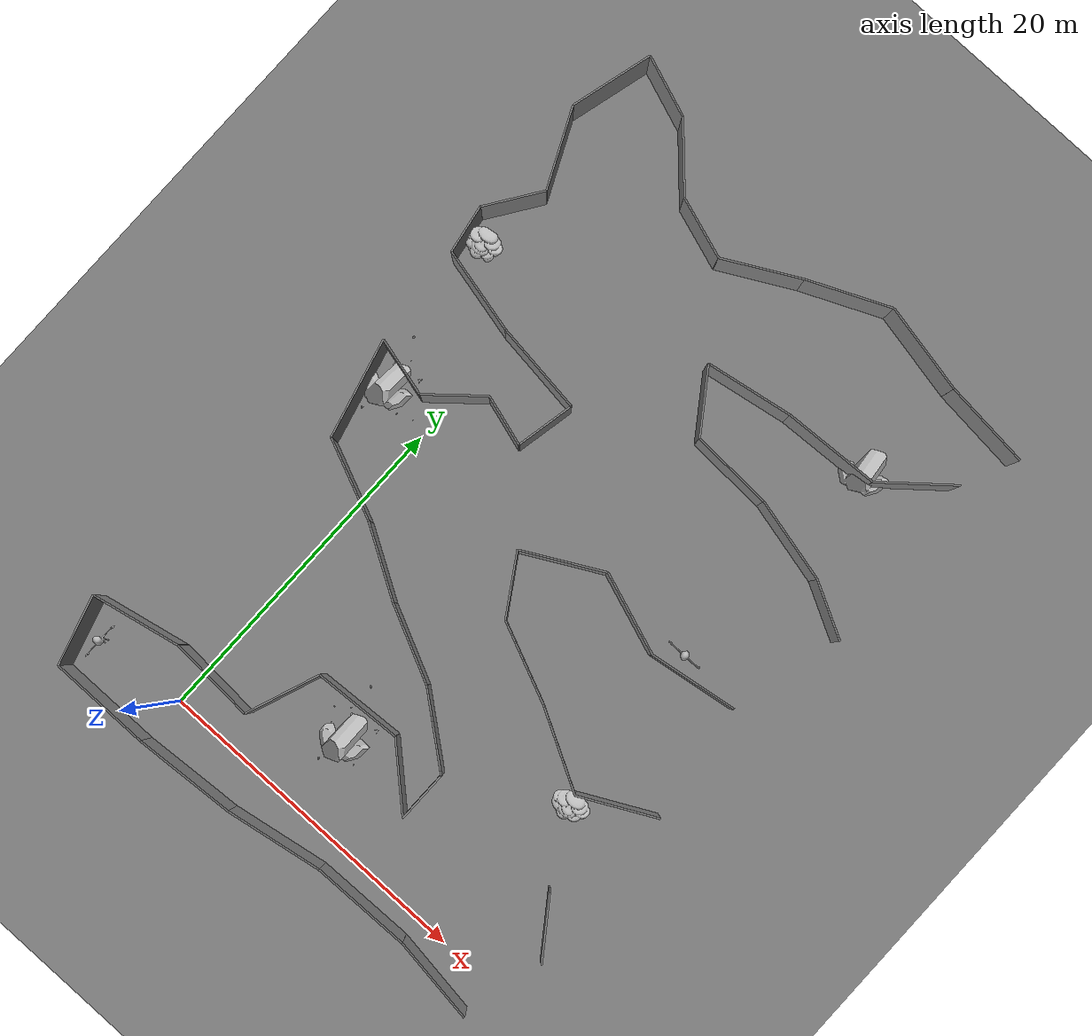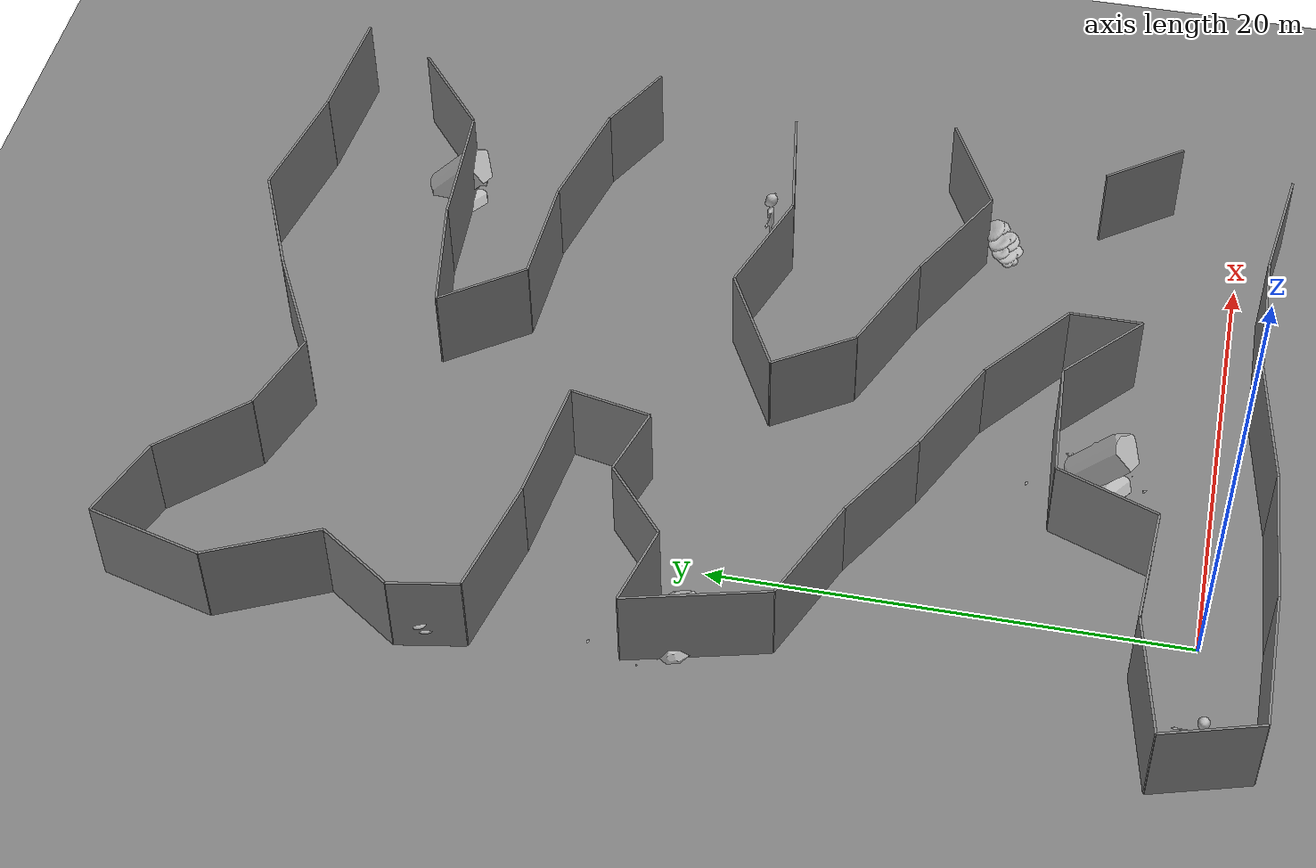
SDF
<sdf version="1.8">
 <world name="mars_cave">
  <model name="ground_plane">
   <static>1</static>
   <link name="link">
    <collision name="collision">
     <geometry><box><normal>0 0 1</normal><size>75 75 0.01</size></box></geometry>
    </collision>
    <visual name="visual">
     <geometry><plane><normal>0 0 1</normal><size>75 75</size></plane></geometry>
     <material>
      <ambient>0.5 0.5 0.5 1</ambient>
      <diffuse>0.5 0.5 0.5 1</diffuse>
      <specular>0.2 0.2 0.2 1</specular>
      <pbr><metal><albedo_map>package://cave_explorer/worlds/textures/mars_terrain1.jpg</albedo_map></metal></pbr>
     </material>
    </visual>
   </link>
   <pose>25 25 0 0 -0 0</pose>
  </model>
  <model name="wall_18">
   <pose>20.700000000000003 -1.4500000000000002 2.0 0 0 -0.13381097747459078</pose>
   <link name="Wall_0">
    <collision name="Wall_0_Collision">
     <geometry><box><size>5.246903848937961 4 0.1</size></box></geometry>
    </collision>
    <visual name="Wall_0_Visual">
     <geometry><box><size>5.246903848937961 4 0.1</size></box></geometry>
     <material>
      <ambient>0.5 0.5 0.5 1</ambient>
      <diffuse>0.5 0.5 0.5 1</diffuse>
      <specular>0.2 0.2 0.2 1</specular>
      <pbr><metal><albedo_map>package://cave_explorer/worlds/textures/wall03.jpg</albedo_map></metal></pbr>
     </material>
    </visual>
    <pose>0 0 0 1.5707963267948966 0 0</pose>
   </link>
   <static>1</static>
  </model>
  <model name="wall_19">
   <pose>15.100000000000001 -1.15 2.0 0 0 0.016665123713940723</pose>
   <link name="Wall_0">
    <collision name="Wall_0_Collision">
     <geometry><box><size>6.000833275471001 4 0.1</size></box></geometry>
    </collision>
    <visual name="Wall_0_Visual">
     <geometry><box><size>6.000833275471001 4 0.1</size></box></geometry>
     <material>
      <ambient>0.5 0.5 0.5 1</ambient>
      <diffuse>0.5 0.5 0.5 1</diffuse>
      <specular>0.2 0.2 0.2 1</specular>
      <pbr><metal><albedo_map>package://cave_explorer/worlds/textures/wall03.jpg</albedo_map></metal></pbr>
     </material>
    </visual>
    <pose>0 0 0 1.5707963267948966 0 0</pose>
   </link>
   <static>1</static>
  </model>
  <model name="wall_20">
   <pose>9.2 -1.7000000000000002 2.0 0 0 0.17073521147528284</pose>
   <link name="Wall_0">
    <collision name="Wall_0_Collision">
     <geometry><box><size>5.885575587824865 4 0.1</size></box></geometry>
    </collision>
    <visual name="Wall_0_Visual">
     <geometry><box><size>5.885575587824865 4 0.1</size></box></geometry>
     <material>
      <ambient>0.5 0.5 0.5 1</ambient>
      <diffuse>0.5 0.5 0.5 1</diffuse>
      <specular>0.2 0.2 0.2 1</specular>
      <pbr><metal><albedo_map>package://cave_explorer/worlds/textures/wall03.jpg</albedo_map></metal></pbr>
     </material>
    </visual>
    <pose>0 0 0 1.5707963267948966 0 0</pose>
   </link>
   <static>1</static>
  </model>
  <model name="wall_21">
   <pose>3.25 -2.4000000000000004 2.0 0 0 0.0654800249234648</pose>
   <link name="Wall_0">
    <collision name="Wall_0_Collision">
     <geometry><box><size>6.113100686231169 4 0.1</size></box></geometry>
    </collision>
    <visual name="Wall_0_Visual">
     <geometry><box><size>6.113100686231169 4 0.1</size></box></geometry>
     <material>
      <ambient>0.5 0.5 0.5 1</ambient>
      <diffuse>0.5 0.5 0.5 1</diffuse>
      <specular>0.2 0.2 0.2 1</specular>
      <pbr><metal><albedo_map>package://cave_explorer/worlds/textures/wall03.jpg</albedo_map></metal></pbr>
     </material>
    </visual>
    <pose>0 0 0 1.5707963267948966 0 0</pose>
   </link>
   <static>1</static>
  </model>
  <model name="wall_22">
   <pose>-2.85 -2.6 2.0 0 0 0.0</pose>
   <link name="Wall_0">
    <collision name="Wall_0_Collision">
     <geometry><box><size>6.1000000000000005 4 0.1</size></box></geometry>
    </collision>
    <visual name="Wall_0_Visual">
     <geometry><box><size>6.1000000000000005 4 0.1</size></box></geometry>
     <material>
      <ambient>0.5 0.5 0.5 1</ambient>
      <diffuse>0.5 0.5 0.5 1</diffuse>
      <specular>0.2 0.2 0.2 1</specular>
      <pbr><metal><albedo_map>package://cave_explorer/worlds/textures/wall03.jpg</albedo_map></metal></pbr>
     </material>
    </visual>
    <pose>0 0 0 1.5707963267948966 0 0</pose>
   </link>
   <static>1</static>
  </model>
  <model name="wall_23">
   <pose>-6.5 -0.55 2.0 0 0 -1.2860658882721845</pose>
   <link name="Wall_0">
    <collision name="Wall_0_Collision">
     <geometry><box><size>4.272001872658765 4 0.1</size></box></geometry>
    </collision>
    <visual name="Wall_0_Visual">
     <geometry><box><size>4.272001872658765 4 0.1</size></box></geometry>
     <material>
      <ambient>0.5 0.5 0.5 1</ambient>
      <diffuse>0.5 0.5 0.5 1</diffuse>
      <specular>0.2 0.2 0.2 1</specular>
      <pbr><metal><albedo_map>package://cave_explorer/worlds/textures/wall03.jpg</albedo_map></metal></pbr>
     </material>
    </visual>
    <pose>0 0 0 1.5707963267948966 0 0</pose>
   </link>
   <static>1</static>
  </model>
  <model name="wall_24">
   <pose>-4.45 2.05 2.0 0 0 -2.936950843760015</pose>
   <link name="Wall_0">
    <collision name="Wall_0_Collision">
     <geometry><box><size>5.412947441089743 4 0.1</size></box></geometry>
    </collision>
    <visual name="Wall_0_Visual">
     <geometry><box><size>5.412947441089743 4 0.1</size></box></geometry>
     <material>
      <ambient>0.5 0.5 0.5 1</ambient>
      <diffuse>0.5 0.5 0.5 1</diffuse>
      <specular>0.2 0.2 0.2 1</specular>
      <pbr><metal><albedo_map>package://cave_explorer/worlds/textures/wall04.jpg</albedo_map></metal></pbr>
     </material>
    </visual>
    <pose>0 0 0 1.5707963267948966 0 0</pose>
   </link>
   <static>1</static>
  </model>
  <model name="wall_25">
   <pose>0.7999999999999999 2.45 2.0 0 0 3.083964226112319</pose>
   <link name="Wall_0">
    <collision name="Wall_0_Collision">
     <geometry><box><size>5.208646657242167 4 0.1</size></box></geometry>
    </collision>
    <visual name="Wall_0_Visual">
     <geometry><box><size>5.208646657242167 4 0.1</size></box></geometry>
     <material>
      <ambient>0.5 0.5 0.5 1</ambient>
      <diffuse>0.5 0.5 0.5 1</diffuse>
      <specular>0.2 0.2 0.2 1</specular>
      <pbr><metal><albedo_map>package://cave_explorer/worlds/textures/wall04.jpg</albedo_map></metal></pbr>
     </material>
    </visual>
    <pose>0 0 0 1.5707963267948966 0 0</pose>
   </link>
   <static>1</static>
  </model>
  <model name="wall_26">
   <pose>4.2 4.449999999999999 2.0 0 0 -1.9270159821910469</pose>
   <link name="Wall_0">
    <collision name="Wall_0_Collision">
     <geometry><box><size>4.588027898781784 4 0.1</size></box></geometry>
    </collision>
    <visual name="Wall_0_Visual">
     <geometry><box><size>4.588027898781784 4 0.1</size></box></geometry>
     <material>
      <ambient>0.5 0.5 0.5 1</ambient>
      <diffuse>0.5 0.5 0.5 1</diffuse>
      <specular>0.2 0.2 0.2 1</specular>
      <pbr><metal><albedo_map>package://cave_explorer/worlds/textures/wall04.jpg</albedo_map></metal></pbr>
     </material>
    </visual>
    <pose>0 0 0 1.5707963267948966 0 0</pose>
   </link>
   <static>1</static>
  </model>
  <model name="wall_27">
   <pose>7.65 6.75 2.0 0 0 -3.085049216644976</pose>
   <link name="Wall_0">
    <collision name="Wall_0_Collision">
     <geometry><box><size>5.3084837759948 4 0.1</size></box></geometry>
    </collision>
    <visual name="Wall_0_Visual">
     <geometry><box><size>5.3084837759948 4 0.1</size></box></geometry>
     <material>
      <ambient>0.5 0.5 0.5 1</ambient>
      <diffuse>0.5 0.5 0.5 1</diffuse>
      <specular>0.2 0.2 0.2 1</specular>
      <pbr><metal><albedo_map>package://cave_explorer/worlds/textures/wall04.jpg</albedo_map></metal></pbr>
     </material>
    </visual>
    <pose>0 0 0 1.5707963267948966 0 0</pose>
   </link>
   <static>1</static>
  </model>
  <model name="wall_28">
   <pose>11.95 5.4 2.0 0 0 2.403777593469328</pose>
   <link name="Wall_0">
    <collision name="Wall_0_Collision">
     <geometry><box><size>4.459820624195551 4 0.1</size></box></geometry>
    </collision>
    <visual name="Wall_0_Visual">
     <geometry><box><size>4.459820624195551 4 0.1</size></box></geometry>
     <material>
      <ambient>0.5 0.5 0.5 1</ambient>
      <diffuse>0.5 0.5 0.5 1</diffuse>
      <specular>0.2 0.2 0.2 1</specular>
      <pbr><metal><albedo_map>package://cave_explorer/worlds/textures/wall04.jpg</albedo_map></metal></pbr>
     </material>
    </visual>
    <pose>0 0 0 1.5707963267948966 0 0</pose>
   </link>
   <static>1</static>
  </model>
  <model name="wall_29">
   <pose>13.6 5.45 2.0 0 0 -1.5707963267948966</pose>
   <link name="Wall_0">
    <collision name="Wall_0_Collision"><geometry><box><size>3.1 4 0.1</size></box></geometry></collision>
    <visual name="Wall_0_Visual">
     <geometry><box><size>3.1 4 0.1</size></box></geometry>
     <material>
      <ambient>0.5 0.5 0.5 1</ambient>
      <diffuse>0.5 0.5 0.5 1</diffuse>
      <specular>0.2 0.2 0.2 1</specular>
      <pbr><metal><albedo_map>package://cave_explorer/worlds/textures/wall04.jpg</albedo_map></metal></pbr>
     </material>
    </visual>
    <pose>0 0 0 1.5707963267948966 0 0</pose>
   </link>
   <static>1</static>
  </model>
  <model name="wall_30">
   <pose>11.649999999999999 8.55 2.0 0 0 -0.6716061562537401</pose>
   <link name="Wall_0">
    <collision name="Wall_0_Collision">
     <geometry><box><size>4.98196748283246 4 0.1</size></box></geometry>
    </collision>
    <visual name="Wall_0_Visual">
     <geometry><box><size>4.98196748283246 4 0.1</size></box></geometry>
     <material>
      <ambient>0.5 0.5 0.5 1</ambient>
      <diffuse>0.5 0.5 0.5 1</diffuse>
      <specular>0.2 0.2 0.2 1</specular>
      <pbr><metal><albedo_map>package://cave_explorer/worlds/textures/wall04.jpg</albedo_map></metal></pbr>
     </material>
    </visual>
    <pose>0 0 0 1.5707963267948966 0 0</pose>
   </link>
   <static>1</static>
  </model>
  <model name="wall_31">
   <pose>7.5 11.149999999999999 2.0 0 0 -0.4453010438876858</pose>
   <link name="Wall_0">
    <collision name="Wall_0_Collision">
     <geometry><box><size>4.875448697299562 4 0.1</size></box></geometry>
    </collision>
    <visual name="Wall_0_Visual">
     <geometry><box><size>4.875448697299562 4 0.1</size></box></geometry>
     <material>
      <ambient>0.5 0.5 0.5 1</ambient>
      <diffuse>0.5 0.5 0.5 1</diffuse>
      <specular>0.2 0.2 0.2 1</specular>
      <pbr><metal><albedo_map>package://cave_explorer/worlds/textures/wall04.jpg</albedo_map></metal></pbr>
     </material>
    </visual>
    <pose>0 0 0 1.5707963267948966 0 0</pose>
   </link>
   <static>1</static>
  </model>
  <model name="wall_32">
   <pose>3.3 13.399999999999999 2.0 0 0 -0.5404195002705843</pose>
   <link name="Wall_0">
    <collision name="Wall_0_Collision">
     <geometry><box><size>4.664761515876241 4 0.1</size></box></geometry>
    </collision>
    <visual name="Wall_0_Visual">
     <geometry><box><size>4.664761515876241 4 0.1</size></box></geometry>
     <material>
      <ambient>0.5 0.5 0.5 1</ambient>
      <diffuse>0.5 0.5 0.5 1</diffuse>
      <specular>0.2 0.2 0.2 1</specular>
      <pbr><metal><albedo_map>package://cave_explorer/worlds/textures/wall05.jpg</albedo_map></metal></pbr>
     </material>
    </visual>
    <pose>0 0 0 1.5707963267948966 0 0</pose>
   </link>
   <static>1</static>
  </model>
  <model name="wall_33">
   <pose>-0.9999999999999999 15.600000000000001 2.0 0 0 -0.41012734054149136</pose>
   <link name="Wall_0">
    <collision name="Wall_0_Collision">
     <geometry><box><size>5.015974481593782 4 0.1</size></box></geometry>
    </collision>
    <visual name="Wall_0_Visual">
     <geometry><box><size>5.015974481593782 4 0.1</size></box></geometry>
     <material>
      <ambient>0.5 0.5 0.5 1</ambient>
      <diffuse>0.5 0.5 0.5 1</diffuse>
      <specular>0.2 0.2 0.2 1</specular>
      <pbr><metal><albedo_map>package://cave_explorer/worlds/textures/wall05.jpg</albedo_map></metal></pbr>
     </material>
    </visual>
    <pose>0 0 0 1.5707963267948966 0 0</pose>
   </link>
   <static>1</static>
  </model>
  <model name="wall_34">
   <pose>-4.05 19.55 2.0 0 0 -1.3218336210021795</pose>
   <link name="Wall_0">
    <collision name="Wall_0_Collision">
     <geometry><box><size>6.087692502089768 4 0.1</size></box></geometry>
    </collision>
    <visual name="Wall_0_Visual">
     <geometry><box><size>6.087692502089768 4 0.1</size></box></geometry>
     <material>
      <ambient>0.5 0.5 0.5 1</ambient>
      <diffuse>0.5 0.5 0.5 1</diffuse>
      <specular>0.2 0.2 0.2 1</specular>
      <pbr><metal><albedo_map>package://cave_explorer/worlds/textures/wall05.jpg</albedo_map></metal></pbr>
     </material>
    </visual>
    <pose>0 0 0 1.5707963267948966 0 0</pose>
   </link>
   <static>1</static>
  </model>
  <model name="wall_35">
   <pose>-3.05 22.05 2.0 0 0 2.889902681831607</pose>
   <link name="Wall_0">
    <collision name="Wall_0_Collision">
     <geometry><box><size>3.61386219991853 4 0.1</size></box></geometry>
    </collision>
    <visual name="Wall_0_Visual">
     <geometry><box><size>3.61386219991853 4 0.1</size></box></geometry>
     <material>
      <ambient>0.5 0.5 0.5 1</ambient>
      <diffuse>0.5 0.5 0.5 1</diffuse>
      <specular>0.2 0.2 0.2 1</specular>
      <pbr><metal><albedo_map>package://cave_explorer/worlds/textures/wall05.jpg</albedo_map></metal></pbr>
     </material>
    </visual>
    <pose>0 0 0 1.5707963267948966 0 0</pose>
   </link>
   <static>1</static>
  </model>
  <model name="wall_36">
   <pose>0.15000000000000002 22.85 2.0 0 0 -2.4301335278502854</pose>
   <link name="Wall_0">
    <collision name="Wall_0_Collision">
     <geometry><box><size>3.8288379438153295 4 0.1</size></box></geometry>
    </collision>
    <visual name="Wall_0_Visual">
     <geometry><box><size>3.8288379438153295 4 0.1</size></box></geometry>
     <material>
      <ambient>0.5 0.5 0.5 1</ambient>
      <diffuse>0.5 0.5 0.5 1</diffuse>
      <specular>0.2 0.2 0.2 1</specular>
      <pbr><metal><albedo_map>package://cave_explorer/worlds/textures/wall05.jpg</albedo_map></metal></pbr>
     </material>
    </visual>
    <pose>0 0 0 1.5707963267948966 0 0</pose>
   </link>
   <static>1</static>
  </model>
  <model name="wall_37">
   <pose>3.0999999999999996 23.65 2.0 0 0 2.8501358591119255</pose>
   <link name="Wall_0">
    <collision name="Wall_0_Collision">
     <geometry><box><size>3.132091952673165 4 0.1</size></box></geometry>
    </collision>
    <visual name="Wall_0_Visual">
     <geometry><box><size>3.132091952673165 4 0.1</size></box></geometry>
     <material>
      <ambient>0.5 0.5 0.5 1</ambient>
      <diffuse>0.5 0.5 0.5 1</diffuse>
      <specular>0.2 0.2 0.2 1</specular>
      <pbr><metal><albedo_map>package://cave_explorer/worlds/textures/wall05.jpg</albedo_map></metal></pbr>
     </material>
    </visual>
    <pose>0 0 0 1.5707963267948966 0 0</pose>
   </link>
   <static>1</static>
  </model>
  <model name="wall_38">
   <pose>4.949999999999999 24.95 2.0 0 0 -1.7681918866447774</pose>
   <link name="Wall_0">
    <collision name="Wall_0_Collision">
     <geometry><box><size>3.5693136595149495 4 0.1</size></box></geometry>
    </collision>
    <visual name="Wall_0_Visual">
     <geometry><box><size>3.5693136595149495 4 0.1</size></box></geometry>
     <material>
      <ambient>0.5 0.5 0.5 1</ambient>
      <diffuse>0.5 0.5 0.5 1</diffuse>
      <specular>0.2 0.2 0.2 1</specular>
      <pbr><metal><albedo_map>package://cave_explorer/worlds/textures/wall05.jpg</albedo_map></metal></pbr>
     </material>
    </visual>
    <pose>0 0 0 1.5707963267948966 0 0</pose>
   </link>
   <static>1</static>
  </model>
  <model name="wall_39">
   <pose>2.55 27.049999999999997 2.0 0 0 -0.12659212727997193</pose>
   <link name="Wall_0">
    <collision name="Wall_0_Collision">
     <geometry><box><size>5.544366510251645 4 0.1</size></box></geometry>
    </collision>
    <visual name="Wall_0_Visual">
     <geometry><box><size>5.544366510251645 4 0.1</size></box></geometry>
     <material>
      <ambient>0.5 0.5 0.5 1</ambient>
      <diffuse>0.5 0.5 0.5 1</diffuse>
      <specular>0.2 0.2 0.2 1</specular>
      <pbr><metal><albedo_map>package://cave_explorer/worlds/textures/wall05.jpg</albedo_map></metal></pbr>
     </material>
    </visual>
    <pose>0 0 0 1.5707963267948966 0 0</pose>
   </link>
   <static>1</static>
  </model>
  <model name="wall_40">
   <pose>-2.75 28.0 2.0 0 0 -0.23109066719589763</pose>
   <link name="Wall_0">
    <collision name="Wall_0_Collision">
     <geometry><box><size>5.239274758971895 4 0.1</size></box></geometry>
    </collision>
    <visual name="Wall_0_Visual">
     <geometry><box><size>5.239274758971895 4 0.1</size></box></geometry>
     <material>
      <ambient>0.5 0.5 0.5 1</ambient>
      <diffuse>0.5 0.5 0.5 1</diffuse>
      <specular>0.2 0.2 0.2 1</specular>
      <pbr><metal><albedo_map>package://cave_explorer/worlds/textures/wall06.jpg</albedo_map></metal></pbr>
     </material>
    </visual>
    <pose>0 0 0 1.5707963267948966 0 0</pose>
   </link>
   <static>1</static>
  </model>
  <model name="wall_41">
   <pose>-5.55 30.05 2.0 0 0 -1.4000611153196136</pose>
   <link name="Wall_0">
    <collision name="Wall_0_Collision">
     <geometry><box><size>2.942787793912431 4 0.1</size></box></geometry>
    </collision>
    <visual name="Wall_0_Visual">
     <geometry><box><size>2.942787793912431 4 0.1</size></box></geometry>
     <material>
      <ambient>0.5 0.5 0.5 1</ambient>
      <diffuse>0.5 0.5 0.5 1</diffuse>
      <specular>0.2 0.2 0.2 1</specular>
      <pbr><metal><albedo_map>package://cave_explorer/worlds/textures/wall06.jpg</albedo_map></metal></pbr>
     </material>
    </visual>
    <pose>0 0 0 1.5707963267948966 0 0</pose>
   </link>
   <static>1</static>
  </model>
  <model name="wall_42">
   <pose>-4.75 33.05 2.0 0 0 -2.166206202273629</pose>
   <link name="Wall_0">
    <collision name="Wall_0_Collision">
     <geometry><box><size>3.744329045369812 4 0.1</size></box></geometry>
    </collision>
    <visual name="Wall_0_Visual">
     <geometry><box><size>3.744329045369812 4 0.1</size></box></geometry>
     <material>
      <ambient>0.5 0.5 0.5 1</ambient>
      <diffuse>0.5 0.5 0.5 1</diffuse>
      <specular>0.2 0.2 0.2 1</specular>
      <pbr><metal><albedo_map>package://cave_explorer/worlds/textures/wall06.jpg</albedo_map></metal></pbr>
     </material>
    </visual>
    <pose>0 0 0 1.5707963267948966 0 0</pose>
   </link>
   <static>1</static>
  </model>
  <model name="wall_43">
   <pose>-4.75 36.85 2.0 0 0 -1.1341691669813554</pose>
   <link name="Wall_0">
    <collision name="Wall_0_Collision">
     <geometry><box><size>4.965883607174054 4 0.1</size></box></geometry>
    </collision>
    <visual name="Wall_0_Visual">
     <geometry><box><size>4.965883607174054 4 0.1</size></box></geometry>
     <material>
      <ambient>0.5 0.5 0.5 1</ambient>
      <diffuse>0.5 0.5 0.5 1</diffuse>
      <specular>0.2 0.2 0.2 1</specular>
      <pbr><metal><albedo_map>package://cave_explorer/worlds/textures/wall06.jpg</albedo_map></metal></pbr>
     </material>
    </visual>
    <pose>0 0 0 1.5707963267948966 0 0</pose>
   </link>
   <static>1</static>
  </model>
  <model name="wall_44">
   <pose>-5.15 41.55 2.0 0 0 -1.8301280711955814</pose>
   <link name="Wall_0">
    <collision name="Wall_0_Collision">
     <geometry><box><size>5.0695167422546294 4 0.1</size></box></geometry>
    </collision>
    <visual name="Wall_0_Visual">
     <geometry><box><size>5.0695167422546294 4 0.1</size></box></geometry>
     <material>
      <ambient>0.5 0.5 0.5 1</ambient>
      <diffuse>0.5 0.5 0.5 1</diffuse>
      <specular>0.2 0.2 0.2 1</specular>
      <pbr><metal><albedo_map>package://cave_explorer/worlds/textures/wall06.jpg</albedo_map></metal></pbr>
     </material>
    </visual>
    <pose>0 0 0 1.5707963267948966 0 0</pose>
   </link>
   <static>1</static>
  </model>
  <model name="wall_45">
   <pose>-2.7 43.35 2.0 0 0 2.795053789155852</pose>
   <link name="Wall_0">
    <collision name="Wall_0_Collision">
     <geometry><box><size>3.8275318418009268 4 0.1</size></box></geometry>
    </collision>
    <visual name="Wall_0_Visual">
     <geometry><box><size>3.8275318418009268 4 0.1</size></box></geometry>
     <material>
      <ambient>0.5 0.5 0.5 1</ambient>
      <diffuse>0.5 0.5 0.5 1</diffuse>
      <specular>0.2 0.2 0.2 1</specular>
      <pbr><metal><albedo_map>package://cave_explorer/worlds/textures/wall06.jpg</albedo_map></metal></pbr>
     </material>
    </visual>
    <pose>0 0 0 1.5707963267948966 0 0</pose>
   </link>
   <static>1</static>
  </model>
  <model name="wall_46">
   <pose>0.6500000000000001 41.05 2.0 0 0 2.3249546567620762</pose>
   <link name="Wall_0">
    <collision name="Wall_0_Collision">
     <geometry><box><size>4.527692569068711 4 0.1</size></box></geometry>
    </collision>
    <visual name="Wall_0_Visual">
     <geometry><box><size>4.527692569068711 4 0.1</size></box></geometry>
     <material>
      <ambient>0.5 0.5 0.5 1</ambient>
      <diffuse>0.5 0.5 0.5 1</diffuse>
      <specular>0.2 0.2 0.2 1</specular>
      <pbr><metal><albedo_map>package://cave_explorer/worlds/textures/wall06.jpg</albedo_map></metal></pbr>
     </material>
    </visual>
    <pose>0 0 0 1.5707963267948966 0 0</pose>
   </link>
   <static>1</static>
  </model>
  <model name="wall_47">
   <pose>4.0 38.8 2.0 0 0 2.819842099193152</pose>
   <link name="Wall_0">
    <collision name="Wall_0_Collision">
     <geometry><box><size>3.7947331922020537 4 0.1</size></box></geometry>
    </collision>
    <visual name="Wall_0_Visual">
     <geometry><box><size>3.7947331922020537 4 0.1</size></box></geometry>
     <material>
      <ambient>0.5 0.5 0.5 1</ambient>
      <diffuse>0.5 0.5 0.5 1</diffuse>
      <specular>0.2 0.2 0.2 1</specular>
      <pbr><metal><albedo_map>package://cave_explorer/worlds/textures/wall06.jpg</albedo_map></metal></pbr>
     </material>
    </visual>
    <pose>0 0 0 1.5707963267948966 0 0</pose>
   </link>
   <static>1</static>
  </model>
  <model name="wall_48">
   <pose>7.949999999999999 39.35 2.0 0 0 -2.6504290553035332</pose>
   <link name="Wall_0">
    <collision name="Wall_0_Collision">
     <geometry><box><size>4 4.876474136094642 0.1</size></box></geometry>
    </collision>
    <visual name="Wall_0_Visual">
     <geometry><box><size>4 4.876474136094642 0.1</size></box></geometry>
     <material>
      <ambient>0.5 0.5 0.5 1</ambient>
      <diffuse>0.5 0.5 0.5 1</diffuse>
      <specular>0.2 0.2 0.2 1</specular>
      <pbr><metal><albedo_map>package://cave_explorer/worlds/textures/stop_sign.jpg</albedo_map></metal></pbr>
     </material>
    </visual>
    <pose>0 0 0 1.5707963267948966 1.5707963267948966 0</pose>
   </link>
   <static>1</static>
  </model>
  <model name="wall_49">
   <pose>12.45 41.55 2.0 0 0 -2.7213959399805177</pose>
   <link name="Wall_0">
    <collision name="Wall_0_Collision">
     <geometry><box><size>5.147815070493502 4 0.1</size></box></geometry>
    </collision>
    <visual name="Wall_0_Visual">
     <geometry><box><size>5.147815070493502 4 0.1</size></box></geometry>
     <material>
      <ambient>0.5 0.5 0.5 1</ambient>
      <diffuse>0.5 0.5 0.5 1</diffuse>
      <specular>0.2 0.2 0.2 1</specular>
      <pbr><metal><albedo_map>package://cave_explorer/worlds/textures/wall07.jpg</albedo_map></metal></pbr>
     </material>
    </visual>
    <pose>0 0 0 1.5707963267948966 0 0</pose>
   </link>
   <static>1</static>
  </model>
  <model name="wall_50">
   <pose>17.5 42.05 2.0 0 0 2.940638389901696</pose>
   <link name="Wall_0">
    <collision name="Wall_0_Collision">
     <geometry><box><size>5.510898293381941 4 0.1</size></box></geometry>
    </collision>
    <visual name="Wall_0_Visual">
     <geometry><box><size>5.510898293381941 4 0.1</size></box></geometry>
     <material>
      <ambient>0.5 0.5 0.5 1</ambient>
      <diffuse>0.5 0.5 0.5 1</diffuse>
      <specular>0.2 0.2 0.2 1</specular>
      <pbr><metal><albedo_map>package://cave_explorer/worlds/textures/wall07.jpg</albedo_map></metal></pbr>
     </material>
    </visual>
    <pose>0 0 0 1.5707963267948966 0 0</pose>
   </link>
   <static>1</static>
  </model>
  <model name="wall_51">
   <pose>22.85 41.25 2.0 0 0 3.047531418961807</pose>
   <link name="Wall_0">
    <collision name="Wall_0_Collision">
     <geometry><box><size>5.323532661682466 4 0.1</size></box></geometry>
    </collision>
    <visual name="Wall_0_Visual">
     <geometry><box><size>5.323532661682466 4 0.1</size></box></geometry>
     <material>
      <ambient>0.5 0.5 0.5 1</ambient>
      <diffuse>0.5 0.5 0.5 1</diffuse>
      <specular>0.2 0.2 0.2 1</specular>
      <pbr><metal><albedo_map>package://cave_explorer/worlds/textures/wall07.jpg</albedo_map></metal></pbr>
     </material>
    </visual>
    <pose>0 0 0 1.5707963267948966 0 0</pose>
   </link>
   <static>1</static>
  </model>
  <model name="wall_53">
   <pose>22.15 36.25 2.0 0 0 0.6973907898697067</pose>
   <link name="Wall_0">
    <collision name="Wall_0_Collision">
     <geometry><box><size>4.827007354458864 4 0.1</size></box></geometry>
    </collision>
    <visual name="Wall_0_Visual">
     <geometry><box><size>4.827007354458864 4 0.1</size></box></geometry>
     <material>
      <ambient>0.5 0.5 0.5 1</ambient>
      <diffuse>0.5 0.5 0.5 1</diffuse>
      <specular>0.2 0.2 0.2 1</specular>
      <pbr><metal><albedo_map>package://cave_explorer/worlds/textures/wall07.jpg</albedo_map></metal></pbr>
     </material>
    </visual>
    <pose>0 0 0 1.5707963267948966 0 0</pose>
   </link>
   <static>1</static>
  </model>
  <model name="wall_54">
   <pose>17.4 34.55 2.0 0 0 0.051678084482430726</pose>
   <link name="Wall_0">
    <collision name="Wall_0_Collision">
     <geometry><box><size>5.807753438292642 4 0.1</size></box></geometry>
    </collision>
    <visual name="Wall_0_Visual">
     <geometry><box><size>5.807753438292642 4 0.1</size></box></geometry>
     <material>
      <ambient>0.5 0.5 0.5 1</ambient>
      <diffuse>0.5 0.5 0.5 1</diffuse>
      <specular>0.2 0.2 0.2 1</specular>
      <pbr><metal><albedo_map>package://cave_explorer/worlds/textures/wall07.jpg</albedo_map></metal></pbr>
     </material>
    </visual>
    <pose>0 0 0 1.5707963267948966 0 0</pose>
   </link>
   <static>1</static>
  </model>
  <model name="wall_55">
   <pose>11.9 33.95 2.0 0 0 0.17137912638950742</pose>
   <link name="Wall_0">
    <collision name="Wall_0_Collision">
     <geometry><box><size>5.2773099207835035 4 0.1</size></box></geometry>
    </collision>
    <visual name="Wall_0_Visual">
     <geometry><box><size>5.2773099207835035 4 0.1</size></box></geometry>
     <material>
      <ambient>0.5 0.5 0.5 1</ambient>
      <diffuse>0.5 0.5 0.5 1</diffuse>
      <specular>0.2 0.2 0.2 1</specular>
      <pbr><metal><albedo_map>package://cave_explorer/worlds/textures/wall07.jpg</albedo_map></metal></pbr>
     </material>
    </visual>
    <pose>0 0 0 1.5707963267948966 0 0</pose>
   </link>
   <static>1</static>
  </model>
  <model name="wall_56">
   <pose>10.5 31.8 2.0 0 0 2.185459278717062</pose>
   <link name="Wall_0">
    <collision name="Wall_0_Collision">
     <geometry><box><size>4.16173040933696 4 0.1</size></box></geometry>
    </collision>
    <visual name="Wall_0_Visual">
     <geometry><box><size>4.16173040933696 4 0.1</size></box></geometry>
     <material>
      <ambient>0.5 0.5 0.5 1</ambient>
      <diffuse>0.5 0.5 0.5 1</diffuse>
      <specular>0.2 0.2 0.2 1</specular>
      <pbr><metal><albedo_map>package://cave_explorer/worlds/textures/wall08.png</albedo_map></metal></pbr>
     </material>
    </visual>
    <pose>0 0 0 1.5707963267948966 0 0</pose>
   </link>
   <static>1</static>
  </model>
  <model name="wall_57">
   <pose>14.15 30.0 2.0 0 0 3.1007989707219275</pose>
   <link name="Wall_0">
    <collision name="Wall_0_Collision">
     <geometry><box><size>4.9040799340956935 4 0.1</size></box></geometry>
    </collision>
    <visual name="Wall_0_Visual">
     <geometry><box><size>4.9040799340956935 4 0.1</size></box></geometry>
     <material>
      <ambient>0.5 0.5 0.5 1</ambient>
      <diffuse>0.5 0.5 0.5 1</diffuse>
      <specular>0.2 0.2 0.2 1</specular>
      <pbr><metal><albedo_map>package://cave_explorer/worlds/textures/wall08.png</albedo_map></metal></pbr>
     </material>
    </visual>
    <pose>0 0 0 1.5707963267948966 0 0</pose>
   </link>
   <static>1</static>
  </model>
  <model name="wall_58">
   <pose>19.1 29.299999999999997 2.0 0 0 2.90604767286893</pose>
   <link name="Wall_0">
    <collision name="Wall_0_Collision">
     <geometry><box><size>5.141984052872976 4 0.1</size></box></geometry>
    </collision>
    <visual name="Wall_0_Visual">
     <geometry><box><size>5.141984052872976 4 0.1</size></box></geometry>
     <material>
      <ambient>0.5 0.5 0.5 1</ambient>
      <diffuse>0.5 0.5 0.5 1</diffuse>
      <specular>0.2 0.2 0.2 1</specular>
      <pbr><metal><albedo_map>package://cave_explorer/worlds/textures/wall08.png</albedo_map></metal></pbr>
     </material>
    </visual>
    <pose>0 0 0 1.5707963267948966 0 0</pose>
   </link>
   <static>1</static>
  </model>
  <model name="wall_59">
   <pose>23.200000000000003 27.85 2.0 0 0 2.6532587025333876</pose>
   <link name="Wall_0">
    <collision name="Wall_0_Collision">
     <geometry><box><size>3.6235341863986865 4 0.1</size></box></geometry>
    </collision>
    <visual name="Wall_0_Visual">
     <geometry><box><size>3.6235341863986865 4 0.1</size></box></geometry>
     <material>
      <ambient>0.5 0.5 0.5 1</ambient>
      <diffuse>0.5 0.5 0.5 1</diffuse>
      <specular>0.2 0.2 0.2 1</specular>
      <pbr><metal><albedo_map>package://cave_explorer/worlds/textures/wall08.png</albedo_map></metal></pbr>
     </material>
    </visual>
    <pose>0 0 0 1.5707963267948966 0 0</pose>
   </link>
   <static>1</static>
  </model>
  <model name="wall_88">
   <pose>21.85 12.2 2.0 0 0 0.4729066036629293</pose>
   <link name="Wall_0">
    <collision name="Wall_0_Collision">
     <geometry><box><size>4.83011387029333 4 0.1</size></box></geometry>
    </collision>
    <visual name="Wall_0_Visual">
     <geometry><box><size>4.83011387029333 4 0.1</size></box></geometry>
     <material>
      <ambient>0.5 0.5 0.5 1</ambient>
      <diffuse>0.5 0.5 0.5 1</diffuse>
      <specular>0.2 0.2 0.2 1</specular>
      <pbr><metal><albedo_map>package://cave_explorer/worlds/textures/wall12.png</albedo_map></metal></pbr>
     </material>
    </visual>
    <pose>0 0 0 1.5707963267948966 0 0</pose>
   </link>
   <static>1</static>
  </model>
  <model name="wall_89">
   <pose>17.4 12.35 2.0 0 0 -0.49782233261700126</pose>
   <link name="Wall_0">
    <collision name="Wall_0_Collision">
     <geometry><box><size>5.235456045083369 4 0.1</size></box></geometry>
    </collision>
    <visual name="Wall_0_Visual">
     <geometry><box><size>5.235456045083369 4 0.1</size></box></geometry>
     <material>
      <ambient>0.5 0.5 0.5 1</ambient>
      <diffuse>0.5 0.5 0.5 1</diffuse>
      <specular>0.2 0.2 0.2 1</specular>
      <pbr><metal><albedo_map>package://cave_explorer/worlds/textures/wall12.png</albedo_map></metal></pbr>
     </material>
    </visual>
    <pose>0 0 0 1.5707963267948966 0 0</pose>
   </link>
   <static>1</static>
  </model>
  <model name="wall_90">
   <pose>12.8 14.6 2.0 0 0 -0.410127340541491</pose>
   <link name="Wall_0">
    <collision name="Wall_0_Collision">
     <geometry><box><size>5.015974481593781 4 0.1</size></box></geometry>
    </collision>
    <visual name="Wall_0_Visual">
     <geometry><box><size>5.015974481593781 4 0.1</size></box></geometry>
     <material>
      <ambient>0.5 0.5 0.5 1</ambient>
      <diffuse>0.5 0.5 0.5 1</diffuse>
      <specular>0.2 0.2 0.2 1</specular>
      <pbr><metal><albedo_map>package://cave_explorer/worlds/textures/wall12.png</albedo_map></metal></pbr>
     </material>
    </visual>
    <pose>0 0 0 1.5707963267948966 0 0</pose>
   </link>
   <static>1</static>
  </model>
  <model name="wall_91">
   <pose>9.45 17.25 2.0 0 0 -1.0040671092713902</pose>
   <link name="Wall_0">
    <collision name="Wall_0_Collision">
     <geometry><box><size>3.9115214431215883 4 0.1</size></box></geometry>
    </collision>
    <visual name="Wall_0_Visual">
     <geometry><box><size>3.9115214431215883 4 0.1</size></box></geometry>
     <material>
      <ambient>0.5 0.5 0.5 1</ambient>
      <diffuse>0.5 0.5 0.5 1</diffuse>
      <specular>0.2 0.2 0.2 1</specular>
      <pbr><metal><albedo_map>package://cave_explorer/worlds/textures/wall12.png</albedo_map></metal></pbr>
     </material>
    </visual>
    <pose>0 0 0 1.5707963267948966 0 0</pose>
   </link>
   <static>1</static>
  </model>
  <model name="wall_92">
   <pose>10.65 20.1 2.0 0 0 -2.6516353273360647</pose>
   <link name="Wall_0">
    <collision name="Wall_0_Collision">
     <geometry><box><size>5.100000000000001 4 0.1</size></box></geometry>
    </collision>
    <visual name="Wall_0_Visual">
     <geometry><box><size>5.100000000000001 4 0.1</size></box></geometry>
     <material>
      <ambient>0.5 0.5 0.5 1</ambient>
      <diffuse>0.5 0.5 0.5 1</diffuse>
      <specular>0.2 0.2 0.2 1</specular>
      <pbr><metal><albedo_map>package://cave_explorer/worlds/textures/wall12.png</albedo_map></metal></pbr>
     </material>
    </visual>
    <pose>0 0 0 1.5707963267948966 0 0</pose>
   </link>
   <static>1</static>
  </model>
  <model name="wall_93">
   <pose>15.3 20.450000000000003 2.0 0 0 2.8012107149478864</pose>
   <link name="Wall_0">
    <collision name="Wall_0_Collision">
     <geometry><box><size>5.092150822589605 4 0.1</size></box></geometry>
    </collision>
    <visual name="Wall_0_Visual">
     <geometry><box><size>5.092150822589605 4 0.1</size></box></geometry>
     <material>
      <ambient>0.5 0.5 0.5 1</ambient>
      <diffuse>0.5 0.5 0.5 1</diffuse>
      <specular>0.2 0.2 0.2 1</specular>
      <pbr><metal><albedo_map>package://cave_explorer/worlds/textures/wall12.png</albedo_map></metal></pbr>
     </material>
    </visual>
    <pose>0 0 0 1.5707963267948966 0 0</pose>
   </link>
   <static>1</static>
  </model>
  <model name="wall_94">
   <pose>20.35 20.0 2.0 0 0 -2.9917801970168965</pose>
   <link name="Wall_0">
    <collision name="Wall_0_Collision">
     <geometry><box><size>5.360037313302959 4 0.1</size></box></geometry>
    </collision>
    <visual name="Wall_0_Visual">
     <geometry><box><size>5.360037313302959 4 0.1</size></box></geometry>
     <material>
      <ambient>0.5 0.5 0.5 1</ambient>
      <diffuse>0.5 0.5 0.5 1</diffuse>
      <specular>0.2 0.2 0.2 1</specular>
      <pbr><metal><albedo_map>package://cave_explorer/worlds/textures/wall12.png</albedo_map></metal></pbr>
     </material>
    </visual>
    <pose>0 0 0 1.5707963267948966 0 0</pose>
   </link>
   <static>1</static>
  </model>
  <model name="wall_97">
   <pose>23.35 4.7 2.0 0 0 2.193995656728963</pose>
   <link name="Wall_0">
    <collision name="Wall_0_Collision">
     <geometry><box><size>4 3.9408120990476063 0.1</size></box></geometry>
    </collision>
    <visual name="Wall_0_Visual">
     <geometry><box><size>4 3.9408120990476063 0.1</size></box></geometry>
     <material>
      <ambient>0.5 0.5 0.5 1</ambient>
      <diffuse>0.5 0.5 0.5 1</diffuse>
      <specular>0.2 0.2 0.2 1</specular>
      <pbr><metal><albedo_map>package://cave_explorer/worlds/textures/stop_sign.jpg</albedo_map></metal></pbr>
     </material>
    </visual>
    <pose>0 0 0 1.5707963267948966 1.5707963267948966 0</pose>
   </link>
   <static>1</static>
  </model>
  <model name="artifact_0">
   <pose>-5.4 -0.3 0.2 1.5707963267948966 0 1.5707963267948966</pose>
   <link name="artifact_0">
    <visual name="artifact_0_Visual">
     <geometry>
      <mesh>
       <scale>1.5 1.5 1.5</scale>
       <uri>package://cave_explorer/worlds/models/artifacts/green_alien/green_alien.obj</uri>
      </mesh>
     </geometry>
    </visual>
    <collision name="artifact_0_collision">
     <geometry>
      <mesh>
       <scale>1.5 1.5 1.5</scale>
       <uri>package://cave_explorer/worlds/models/artifacts/green_alien/green_alien.obj</uri>
      </mesh>
     </geometry>
    </collision>
   </link>
   <static>1</static>
  </model>
  <model name="artifact_1">
   <pose>8.2 5.2 -0.2 1.5707963267948966 0 0</pose>
   <link name="artifact_0">
    <visual name="artifact_0_Visual">
     <geometry>
      <mesh>
       <scale>0.07 0.07 0.07</scale>
       <uri>package://cave_explorer/worlds/models/artifacts/green_crystals_game_ready_asset/green_crystals_game_ready_asset.obj</uri>
      </mesh>
     </geometry>
    </visual>
    <collision name="artifact_0_collision">
     <geometry>
      <mesh>
       <scale>0.07 0.07 0.07</scale>
       <uri>package://cave_explorer/worlds/models/artifacts/green_crystals_game_ready_asset/green_crystals_game_ready_asset.obj</uri>
      </mesh>
     </geometry>
    </collision>
   </link>
   <static>1</static>
  </model>
  <model name="artifact_4">
   <pose>20.0 10.2 0.8 1.5707963267948966 0 0</pose>
   <link name="artifact_0">
    <visual name="artifact_0_Visual">
     <geometry>
      <mesh>
       <scale>7.0 7.0 7.0</scale>
       <uri>package://cave_explorer/worlds/models/artifacts/mushrooms_blue/mushrooms_blue.obj</uri>
      </mesh>
     </geometry>
    </visual>
    <collision name="artifact_0_collision">
     <geometry>
      <mesh>
       <scale>7.0 7.0 7.0</scale>
       <uri>package://cave_explorer/worlds/models/artifacts/mushrooms_blue/mushrooms_blue.obj</uri>
      </mesh>
     </geometry>
    </collision>
   </link>
   <static>1</static>
  </model>
  <model name="artifact_5">
   <pose>19.1 20.8 0.2 1.5707963267948966 0 3.141592653589793</pose>
   <link name="artifact_0">
    <visual name="artifact_0_Visual">
     <geometry>
      <mesh>
       <scale>1.5 1.5 1.5</scale>
       <uri>package://cave_explorer/worlds/models/artifacts/green_alien/green_alien.obj</uri>
      </mesh>
     </geometry>
    </visual>
    <collision name="artifact_0_collision">
     <geometry>
      <mesh>
       <scale>1.5 1.5 1.5</scale>
       <uri>package://cave_explorer/worlds/models/artifacts/green_alien/green_alien.obj</uri>
      </mesh>
     </geometry>
    </collision>
   </link>
   <static>1</static>
  </model>
  <model name="artifact_6">
   <pose>-3.3 21.4 -0.2 1.5707963267948966 0 0</pose>
   <link name="artifact_0">
    <visual name="artifact_0_Visual">
     <geometry>
      <mesh>
       <scale>0.07 0.07 0.07</scale>
       <uri>package://cave_explorer/worlds/models/artifacts/green_crystals_game_ready_asset/green_crystals_game_ready_asset.obj</uri>
      </mesh>
     </geometry>
    </visual>
    <collision name="artifact_0_collision">
     <geometry>
      <mesh>
       <scale>0.07 0.07 0.07</scale>
       <uri>package://cave_explorer/worlds/models/artifacts/green_crystals_game_ready_asset/green_crystals_game_ready_asset.obj</uri>
      </mesh>
     </geometry>
    </collision>
   </link>
   <static>1</static>
  </model>
  <model name="artifact_9">
   <pose>-4.7 30.2 0.8 1.5707963267948966 0 0</pose>
   <link name="artifact_0">
    <visual name="artifact_0_Visual">
     <geometry>
      <mesh>
       <scale>7.0 7.0 7.0</scale>
       <uri>package://cave_explorer/worlds/models/artifacts/mushrooms_blue/mushrooms_blue.obj</uri>
      </mesh>
     </geometry>
    </visual>
    <collision name="artifact_0_collision">
     <geometry>
      <mesh>
       <scale>7.0 7.0 7.0</scale>
       <uri>package://cave_explorer/worlds/models/artifacts/mushrooms_blue/mushrooms_blue.obj</uri>
      </mesh>
     </geometry>
    </collision>
   </link>
   <static>1</static>
  </model>
  <model name="artifact_11">
   <pose>19.8 35.8 -0.4 1.5707963267948966 0 0</pose>
   <link name="artifact_0">
    <visual name="artifact_0_Visual">
     <geometry>
      <mesh>
       <scale>0.07 0.07 0.07</scale>
       <uri>package://cave_explorer/worlds/models/artifacts/green_crystals_game_ready_asset/green_crystals_game_ready_asset.obj</uri>
      </mesh>
     </geometry>
    </visual>
    <collision name="artifact_0_collision">
     <geometry>
      <mesh>
       <scale>0.07 0.07 0.07</scale>
       <uri>package://cave_explorer/worlds/models/artifacts/green_crystals_game_ready_asset/green_crystals_game_ready_asset.obj</uri>
      </mesh>
     </geometry>
    </collision>
   </link>
   <static>1</static>
  </model>
 </world>
</sdf>
